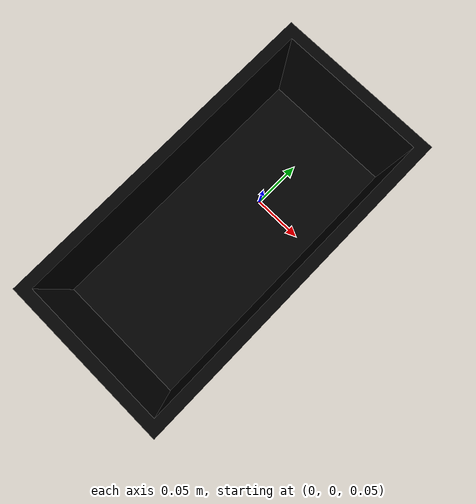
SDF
<?xml version="1.0" ?>
<sdf version="1.5">
  <model name="dropzone">
    <pose>0 0 0.05 0 0 0</pose>
    <link name="link">
      <inertial>
        <mass>1</mass>
        <inertia>
          <ixx>0.0083</ixx>
          <iyy>0.0093375</iyy>
          <izz>0.0026975</izz>
        </inertia>
      </inertial>

      <collision name="collision">
        <geometry>
          <mesh>
            <uri>model://dropzone/meshes/dropzone.dae</uri>
          </mesh>
        </geometry>
      </collision>

      <visual name="visual">
        <geometry>
          <mesh>
            <uri>model://dropzone/meshes/dropzone.dae</uri>
          </mesh>
        </geometry>
        <material> <!-- Dropzone material -->
          <ambient>0 0 0 1</ambient>
          <diffuse>0 0 0 1</diffuse>
          <specular>0 0 0 0</specular>
          <emissive>0 0 0 1</emissive>
        </material> <!-- End Dropzone material -->
      </visual>

    </link>
  </model>
</sdf>
